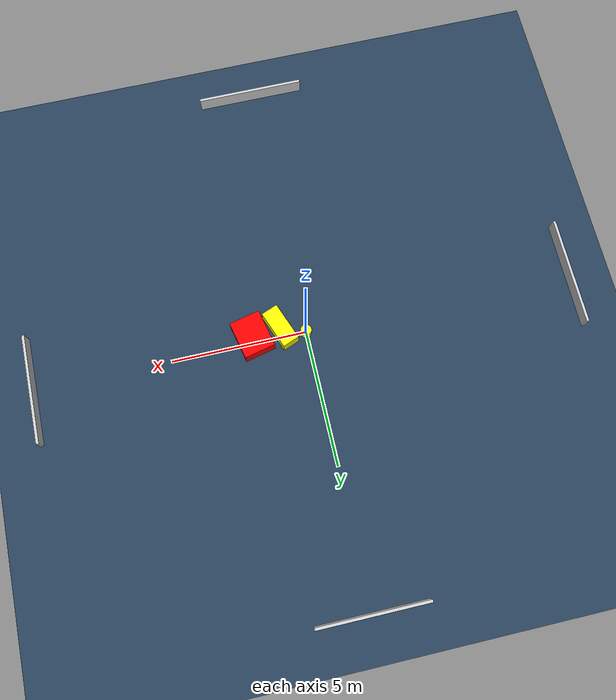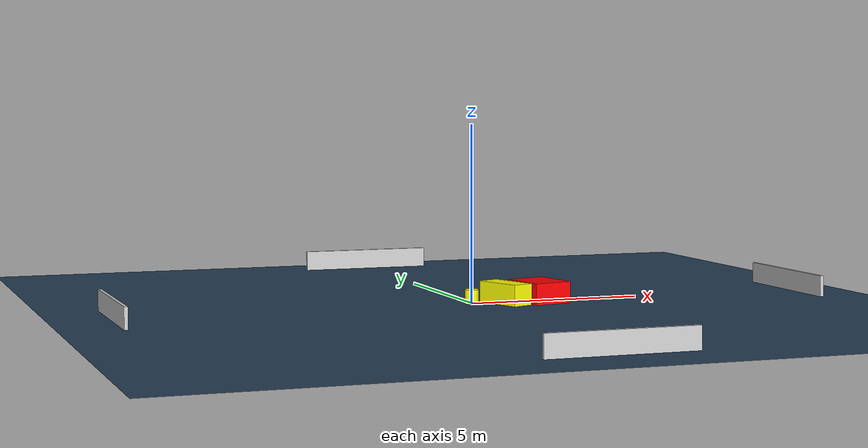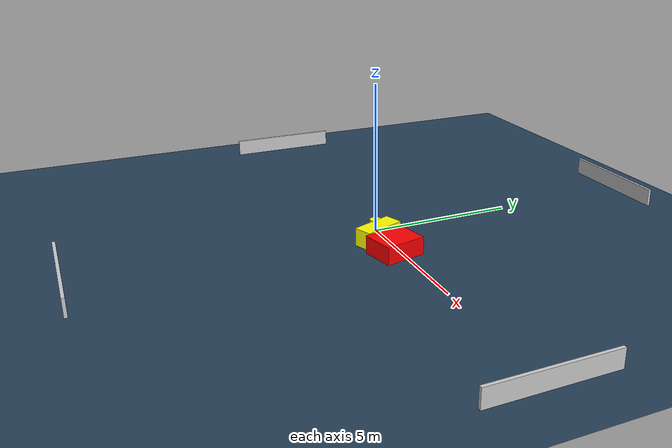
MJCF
<?xml version="1.0" ?>
<mujoco model="generated_environment">
  <option timestep="0.01" integrator="RK4" cone="elliptic"/>
  <default>
    <geom density="1"/>
  </default>
  <asset>
    <texture builtin="gradient" height="3072" name="skybox" rgb1="0.3 0.5 0.7" rgb2="0 0 0" type="skybox" width="512"/>
    <texture builtin="checker" height="300" name="groundplane" rgb1="0.2 0.3 0.4" rgb2="0.1 0.2 0.3" type="2d" width="300"/>
    <material name="groundplane" reflectance="0.2" texrepeat="5 5" texture="groundplane"/>
  </asset>
  <worldbody>
    <light dir="0 0 -1" directional="true" pos="0 0 1.5"/>
    <geom condim="3" friction="0.5 0.005 0.001" material="groundplane" name="floor" pos="0 0 0" size="0 0 0.05" type="plane"/>
    <body name="walls">
      <geom name="wall_1" condim="4" pos="-10.0 0.0 0.3" rgba="0.800000011920929 0.800000011920929 0.800000011920929 1.0" size="0.05 2.0 0.3" type="box"/>
      <geom name="wall_2" condim="4" pos="10.0 0.0 0.3" rgba="0.800000011920929 0.800000011920929 0.800000011920929 1.0" size="0.05 2.0 0.3" type="box"/>
      <geom name="wall_3" condim="4" pos="0.0 -10.0 0.3" rgba="0.800000011920929 0.800000011920929 0.800000011920929 1.0" size="2.0 0.05 0.3" type="box"/>
      <geom name="wall_4" condim="4" pos="0.0 10.0 0.3" rgba="0.800000011920929 0.800000011920929 0.800000011920929 1.0" size="2.0 0.05 0.3" type="box"/>
    </body>
    <body name="robot">
      <joint name="joint_x" type="slide" pos="0 0 0" axis="1 0 0"/>
      <joint name="joint_y" type="slide" pos="0 0 0" axis="0 1 0"/>
      <geom name="robot" type="cylinder" pos="0.0 0.0 0.2" size="0.2 0.2 0.0" mass="5.0" friction="1.0 0.005 0.0001" condim="4" rgba="1.0 1.0 0.0 1.0"/>
    </body>
    <body name="obstacle_1_movable">
      <geom name="obstacle_1_movable" condim="4" pos="0.891390686134453 -0.30928681880808045 0.3" euler="0 0 201.08869306174023" friction="0.0 0.005 0.001" rgba="1.0 1.0 0.0 1.0" size="0.31705849626661375 0.7227450935589357 0.3" type="box" mass="0.1"/>
      <joint type="free"/>
    </body>
    <body name="obstacle_2_static">
      <geom name="obstacle_2_static" condim="4" pos="1.9428394729401879 -0.21780604868616402 0.3" euler="0 0 282.74189888103314" friction="0.0 0.005 0.001" rgba="1.0 0.0 0.0 1.0" size="0.6981549272859033 0.5781178039634893 0.3" type="box"/>
    </body>
  </worldbody>
  <actuator>
    <motor name="actuator_x" joint="joint_x" gear="1" ctrlrange="-1 1"/>
    <motor name="actuator_y" joint="joint_y" gear="1" ctrlrange="-1 1"/>
  </actuator>
</mujoco>
